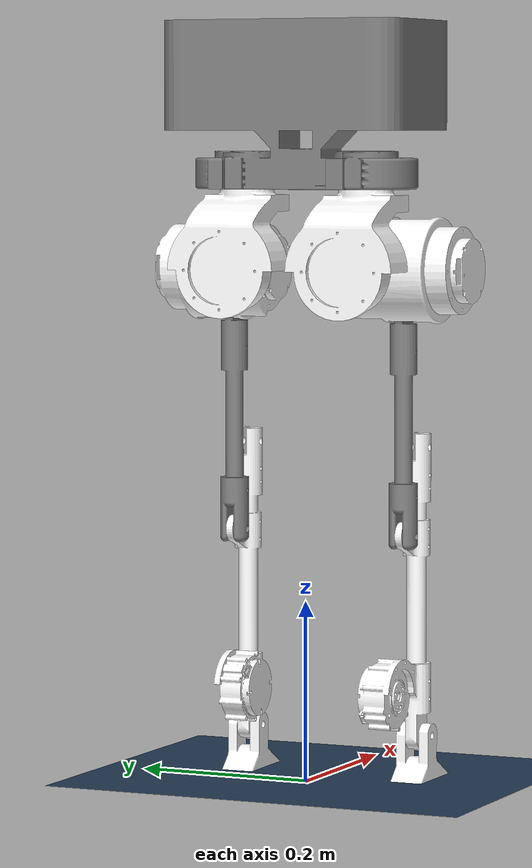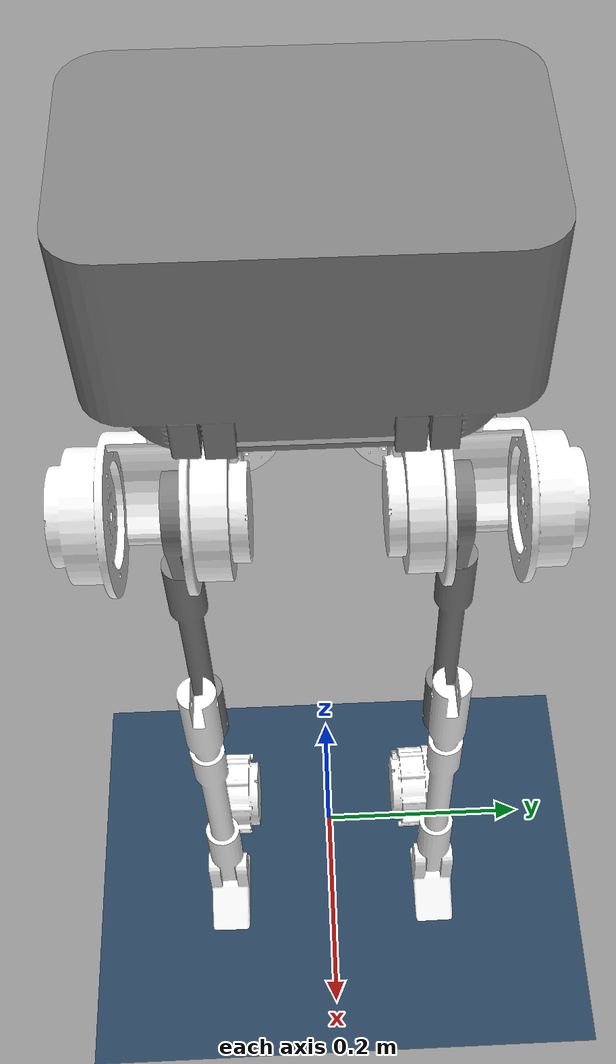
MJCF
<mujoco model="YX-1 scene">
  <include file="YX-1.xml"/>

  <statistic center="1.0 0.7 1.0" extent="0.8"/>

  <visual>
    <headlight diffuse="0.6 0.6 0.6" ambient="0.1 0.1 0.1" specular="0.9 0.9 0.9"/>
    <rgba haze="0.15 0.25 0.35 1"/>
    <global azimuth="-140" elevation="-20"/>
  </visual>

  <asset>
    <texture type="skybox" builtin="flat" rgb1="0 0 0" rgb2="0 0 0" width="512" height="3072"/>
    <texture type="2d" name="groundplane" builtin="checker" mark="edge" rgb1="0.2 0.3 0.4" rgb2="0.1 0.2 0.3" markrgb="0.8 0.8 0.8" width="300" height="300"/>
    <material name="groundplane" texture="groundplane" texuniform="true" texrepeat="5 5" reflectance="0.2"/>
  </asset>

  <worldbody>
    <light pos="1 0 3.5" dir="0 0 -1" directional="true"/>
    <geom name="floor" size="0 0 0.05" type="plane" material="groundplane"/>
  </worldbody>
</mujoco>

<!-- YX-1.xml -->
<mujoco model="YX-1">
  <compiler angle="radian" meshdir="meshes/"/>

  <default>
    <joint armature="0.01" damping="0.01" frictionloss="0.01"/>
  </default>

  <asset>
    <mesh name="base_link" file="base_link.STL"/>
    <mesh name="left_yaw_Link" file="left_yaw_Link.STL"/>
    <mesh name="left_roll_Link" file="left_roll_Link.STL"/>
    <mesh name="left_pitch_Link" file="left_pitch_Link.STL"/>
    <mesh name="left_knee_Link" file="left_knee_Link.STL"/>
    <mesh name="left_ankle_Link" file="left_ankle_Link.STL"/>
    <mesh name="right_yaw_Link" file="right_yaw_Link.STL"/>
    <mesh name="right_roll_Link" file="right_roll_Link.STL"/>
    <mesh name="right_pitch_Link" file="right_pitch_Link.STL"/>
    <mesh name="right_knee_Link" file="right_knee_Link.STL"/>
    <mesh name="right_ankle_Link" file="right_ankle_Link.STL"/>
  </asset>

  <worldbody>
    <body name="base_link"   pos="0 0 0.7">
      <inertial pos="3.5259e-05 -1.21619e-05 0.0608416" quat="0.499989 0.500019 -0.500011 0.499981" mass="3.08899" diaginertia="0.0264841 0.0219225 0.0130808"/>
      <joint name="floating_base_joint" type="free" limited="false" actuatorfrclimited="false"/>
      <geom type="mesh" contype="0" conaffinity="0" group="1" density="0" rgba="0.498039 0.498039 0.498039 1" mesh="base_link"/>
      <geom type="mesh" rgba="0.498039 0.498039 0.498039 1" mesh="base_link"/>
      <body name="left_yaw_Link" pos="0 0.071324 -0.1324">
        <inertial pos="-0.0350037 -0.000456592 0.0372464" quat="0.93616 -0.00220937 0.351515 0.00603969" mass="0.395556" diaginertia="0.000763733 0.000520618 0.00043245"/>
        <joint name="left_yaw_joint" pos="0 0 0" axis="0 0 1" range="-0.43 0.43" actuatorfrcrange="-20 20"/>
        <geom type="mesh" contype="0" conaffinity="0" group="1" density="0" rgba="1 1 1 1" mesh="left_yaw_Link"/>
        <geom type="mesh" rgba="1 1 1 1" mesh="left_yaw_Link"/>
        <body name="left_roll_Link" pos="-0.024498 0 0">
          <inertial pos="0.0490548 0.0415198 2.64908e-06" quat="0.649368 -6.43374e-06 4.17196e-05 0.760474" mass="0.614935" diaginertia="0.000921445 0.000673332 0.000649397"/>
          <joint name="left_roll_joint" pos="0 0 0" axis="1 0 0" range="-0.32 0.32" actuatorfrcrange="-33.5 33.5"/>
          <geom type="mesh" contype="0" conaffinity="0" group="1" density="0" rgba="1 1 1 1" mesh="left_roll_Link"/>
          <geom type="mesh" rgba="1 1 1 1" mesh="left_roll_Link"/>
          <body name="left_pitch_Link" pos="0.057794 0.016155 0">
            <inertial pos="-0.000175168 0.0134604 -0.121726" quat="0.7024 0.0108742 -0.0107241 0.711619" mass="0.191561" diaginertia="0.000321848 0.000309382 3.37508e-05"/>
            <joint name="left_pitch_joint" pos="0 0 0" axis="0 1 0" range="-1.57 1.57" actuatorfrcrange="-20 20"/>
            <geom type="mesh" contype="0" conaffinity="0" group="1" density="0" rgba="0.498039 0.498039 0.498039 1" mesh="left_pitch_Link"/>
            <geom type="mesh" rgba="0.498039 0.498039 0.498039 1" mesh="left_pitch_Link"/>
            <body name="left_knee_Link" pos="0 0.014999 -0.29322">
              <inertial pos="0.0165805 -0.00610628 -0.0984502" quat="0.694111 -0.0128863 -0.0143755 0.719609" mass="0.343458" diaginertia="0.000719914 0.000649671 0.000107227"/>
              <joint name="left_knee_joint" pos="0 0 0" axis="0 1 0" range="0 2.05" actuatorfrcrange="-20 20"/>
              <geom type="mesh" contype="0" conaffinity="0" group="1" density="0" rgba="1 1 1 1" mesh="left_knee_Link"/>
              <geom type="mesh" rgba="1 1 1 1" mesh="left_knee_Link"/>
              <body name="left_ankle_Link" pos="0.036954 0 -0.226">
                <inertial pos="0.0112721 0.00112318 -0.0497622" quat="0.441786 0.546302 0.550778 0.45058" mass="0.231347" diaginertia="0.00030801 0.00025571 0.000111597"/>
                <joint name="left_ankle_joint" pos="0 0 0" axis="0 1 0" range="-0.87 0.52" actuatorfrcrange="-12 12"/>
                <geom type="mesh" contype="0" conaffinity="0" group="1" density="0" rgba="1 1 1 1" mesh="left_ankle_Link"/>
                <geom type="mesh" rgba="1 1 1 1" mesh="left_ankle_Link"/>
              </body>
            </body>
          </body>
        </body>
      </body>
      <body name="right_yaw_Link" pos="0 -0.071324 -0.1324">
        <inertial pos="-0.0350037 0.000456591 0.0372464" quat="0.93616 0.00220863 0.351515 -0.00603957" mass="0.395556" diaginertia="0.000763733 0.000520618 0.00043245"/>
        <joint name="right_yaw_joint" pos="0 0 0" axis="0 0 1" range="-0.43 0.43" actuatorfrcrange="-20 20"/>
        <geom type="mesh" contype="0" conaffinity="0" group="1" density="0" rgba="1 1 1 1" mesh="right_yaw_Link"/>
        <geom type="mesh" rgba="1 1 1 1" mesh="right_yaw_Link"/>
        <body name="right_roll_Link" pos="-0.024498 0 0">
          <inertial pos="0.0490548 -0.0415198 2.47326e-06" quat="0.760474 -4.20147e-05 6.1539e-06 0.649368" mass="0.614935" diaginertia="0.000921445 0.000673332 0.000649397"/>
          <joint name="right_roll_joint" pos="0 0 0" axis="1 0 0" range="-0.32 0.32" actuatorfrcrange="-33.5 33.5"/>
          <geom type="mesh" contype="0" conaffinity="0" group="1" density="0" rgba="1 1 1 1" mesh="right_roll_Link"/>
          <geom type="mesh" rgba="1 1 1 1" mesh="right_roll_Link"/>
          <body name="right_pitch_Link" pos="0.057794 -0.016155 0">
            <inertial pos="-0.000175994 -0.0134605 -0.121726" quat="0.711622 -0.0107339 0.0108656 0.702397" mass="0.191561" diaginertia="0.000321848 0.000309382 3.37507e-05"/>
            <joint name="right_pitch_joint" pos="0 0 0" axis="0 1 0" range="-1.57 1.57" actuatorfrcrange="-20 20"/>
            <geom type="mesh" contype="0" conaffinity="0" group="1" density="0" rgba="0.498039 0.498039 0.498039 1" mesh="right_pitch_Link"/>
            <geom type="mesh" rgba="0.498039 0.498039 0.498039 1" mesh="right_pitch_Link"/>
            <body name="right_knee_Link" pos="0 -0.014999 -0.29322">
              <inertial pos="0.016555 0.00415228 -0.0986051" quat="0.703507 -0.0121306 -0.0132941 0.71046" mass="0.343458" diaginertia="0.000719913 0.000649565 0.000107333"/>
              <joint name="right_knee_joint" pos="0 0 0" axis="0 1 0" range="0 2.05" actuatorfrcrange="-20 20"/>
              <geom type="mesh" contype="0" conaffinity="0" group="1" density="0" rgba="1 1 1 1" mesh="right_knee_Link"/>
              <geom type="mesh" rgba="1 1 1 1" mesh="right_knee_Link"/>
              <body name="right_ankle_Link" pos="0.036954 0 -0.226">
                <inertial pos="0.0112715 -0.00117105 -0.0497622" quat="0.447626 0.55344 0.543605 0.44478" mass="0.231347" diaginertia="0.00030801 0.00025571 0.000111597"/>
                <joint name="right_ankle_joint" pos="0 0 0" axis="0 1 0" range="-0.87 0.52" actuatorfrcrange="-12 12"/>
                <geom type="mesh" contype="0" conaffinity="0" group="1" density="0" rgba="1 1 1 1" mesh="right_ankle_Link"/>
                <geom type="mesh" rgba="1 1 1 1" mesh="right_ankle_Link"/>
              </body>
            </body>
          </body>
        </body>
      </body>
    </body>
  </worldbody>

  <actuator>
    <motor name="left_yaw_joint" joint="left_yaw_joint"/>
    <motor name="left_roll_joint" joint="left_roll_joint"/>
    <motor name="left_pitch_joint" joint="left_pitch_joint"/>
    <motor name="left_knee_joint" joint="left_knee_joint"/>
    <motor name="left_ankle_joint" joint="left_ankle_joint"/>

    <motor name="right_yaw_joint" joint="right_yaw_joint"/>
    <motor name="right_roll_joint" joint="right_roll_joint"/>
    <motor name="right_pitch_joint" joint="right_pitch_joint"/>
    <motor name="right_knee_joint" joint="right_knee_joint"/>
    <motor name="right_ankle_joint" joint="right_ankle_joint"/>

  </actuator>

</mujoco>
